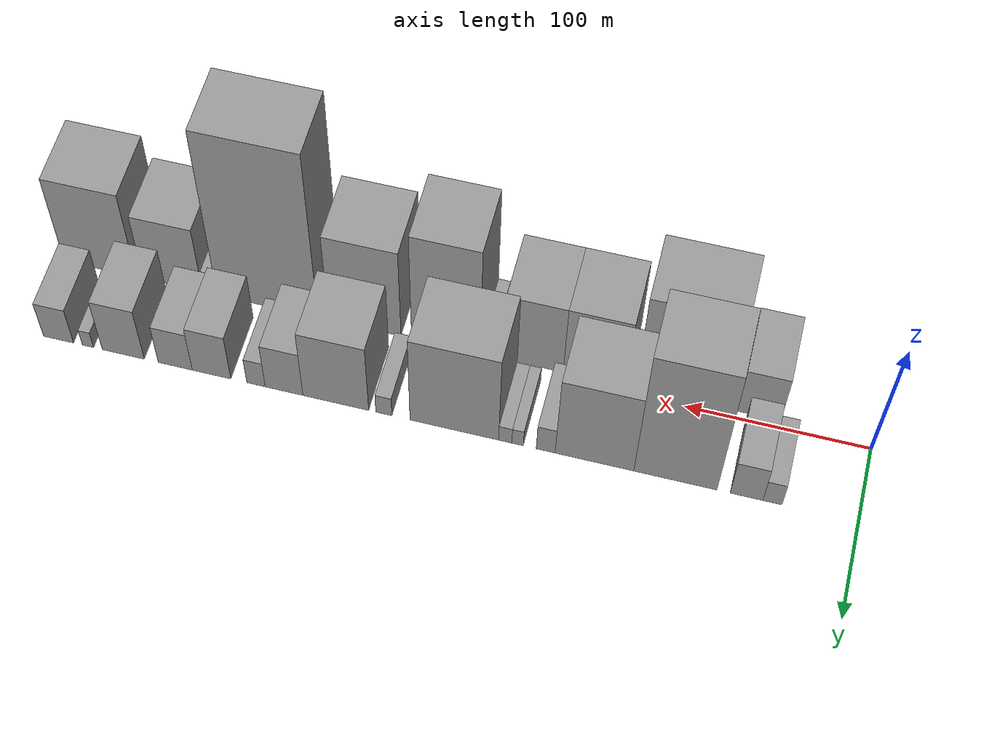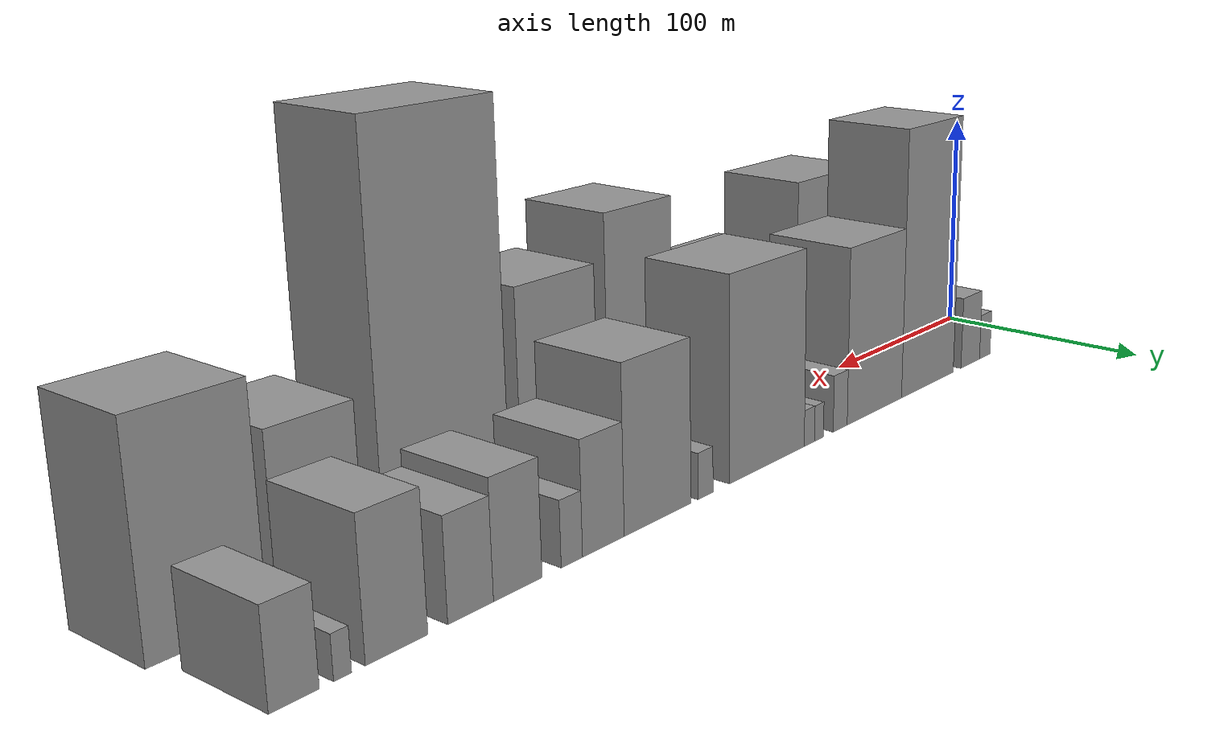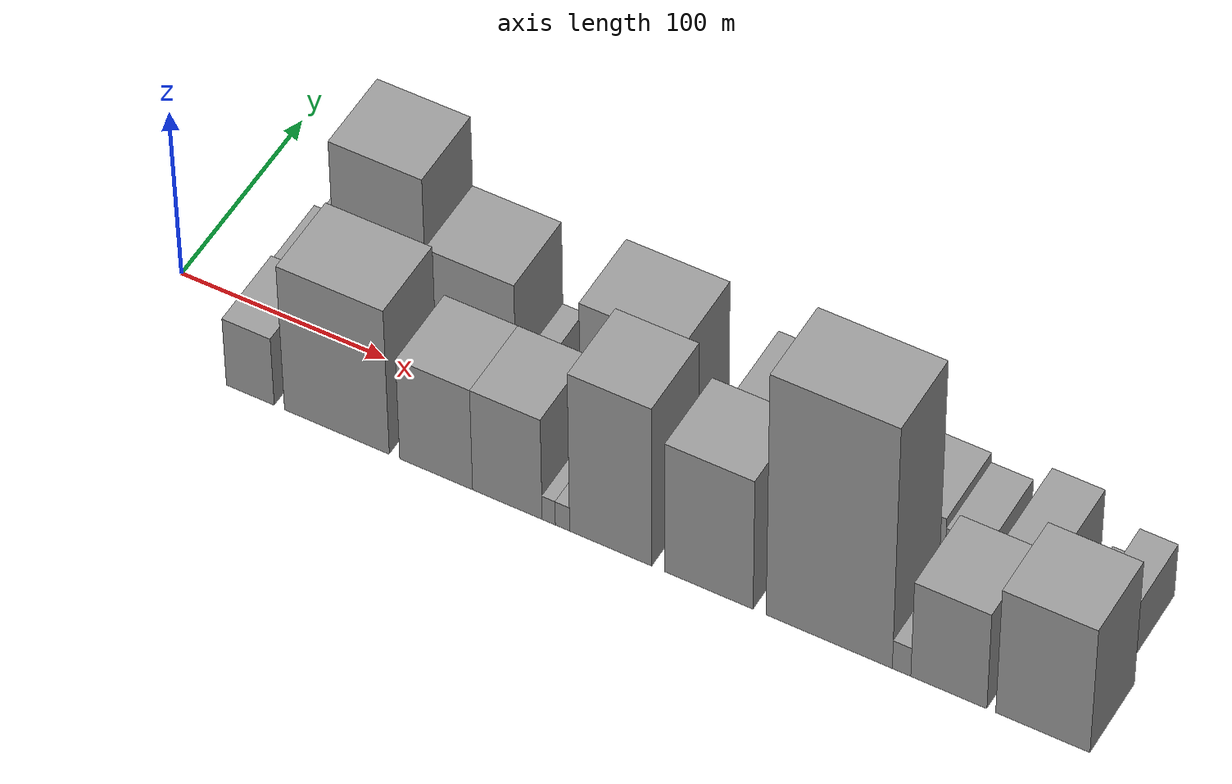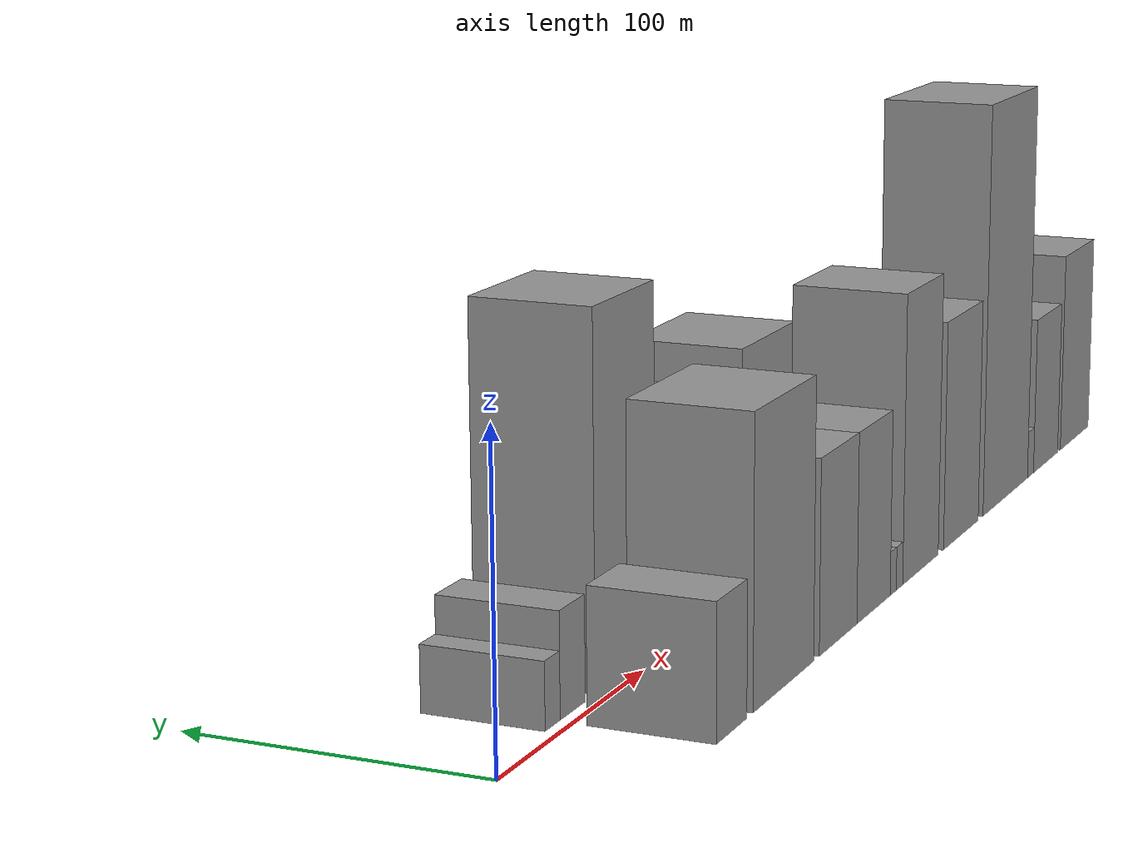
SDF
<sdf version="1.6">
 <world name="default">
  <scene>
   <sky><clouds><speed>12</speed></clouds></sky>
   <ambient>0.4 0.4 0.4 1</ambient>
   <background>0.7 0.7 0.7 1</background>
   <shadows>1</shadows>
  </scene>
  <gravity>0 0 -9.8066</gravity>
  <magnetic_field>6e-06 2.3e-05 -4.2e-05</magnetic_field>
  <physics default="0" name="default_physics" type="ode">
   <ode>
    <solver>
     <type>quick</type>
     <iters>10</iters>
     <sor>1.0</sor>
     <use_dynamic_moi_rescaling>0</use_dynamic_moi_rescaling>
    </solver>
    <constraints>
     <cfm>0</cfm>
     <erp>0.2</erp>
     <contact_max_correcting_vel>100</contact_max_correcting_vel>
     <contact_surface_layer>0.001</contact_surface_layer>
    </constraints>
   </ode>
   <max_step_size>0.004</max_step_size>
   <real_time_factor>1</real_time_factor>
   <real_time_update_rate>250</real_time_update_rate>
  </physics>
  <light name="sun" type="directional">
   <pose>0 0 10 0 0 0</pose>
   <diffuse>0.8 0.8 0.8 1</diffuse>
   <specular>0.2 0.2 0.2 1</specular>
   <attenuation>
    <range>1000</range>
    <constant>0.9</constant>
    <linear>0.01</linear>
    <quadratic>0.001</quadratic>
   </attenuation>
   <direction>-0.5 0.1 -0.9</direction>
  </light>
  <model name="building_1">
   <static>1</static>
   <pose>45.0158 24.5000 0 0.000000 0.000000 1.570796</pose>
   <link name="link">
    <pose>0 0 10.50 0 0 0</pose>
    <collision name="collision"><geometry><box><size>40.0000 10.0315 21.0000</size></box></geometry></collision>
    <visual name="visual">
     <cast_shadows>0</cast_shadows>
     <geometry><box><size>40.0000 10.0315 21.0000</size></box></geometry>
     <material>
      <script>
       <uri>model://grey_wall/materials/scripts</uri>
       <uri>model://grey_wall/materials/textures</uri>
       <name>vrc/grey_wall</name>
      </script>
     </material>
    </visual>
   </link>
  </model>
  <model name="building_2">
   <static>1</static>
   <pose>58.6324 24.5000 0 0.000000 0.000000 1.570796</pose>
   <link name="link">
    <pose>0 0 16.50 0 0 0</pose>
    <collision name="collision"><geometry><box><size>40.0000 17.2018 33.0000</size></box></geometry></collision>
    <visual name="visual">
     <cast_shadows>0</cast_shadows>
     <geometry><box><size>40.0000 17.2018 33.0000</size></box></geometry>
     <material>
      <script>
       <uri>model://grey_wall/materials/scripts</uri>
       <uri>model://grey_wall/materials/textures</uri>
       <name>vrc/grey_wall</name>
      </script>
     </material>
    </visual>
   </link>
  </model>
  <model name="building_3">
   <static>1</static>
   <pose>96.3854 24.5000 0 0.000000 0.000000 1.570796</pose>
   <link name="link">
    <pose>0 0 58.50 0 0 0</pose>
    <collision name="collision"><geometry><box><size>40.0000 44.3041 117.0000</size></box></geometry></collision>
    <visual name="visual">
     <cast_shadows>0</cast_shadows>
     <geometry><box><size>40.0000 44.3041 117.0000</size></box></geometry>
     <material>
      <script>
       <uri>model://grey_wall/materials/scripts</uri>
       <uri>model://grey_wall/materials/textures</uri>
       <name>vrc/grey_wall</name>
      </script>
     </material>
    </visual>
   </link>
  </model>
  <model name="building_4">
   <static>1</static>
   <pose>139.6965 24.5000 0 0.000000 0.000000 1.570796</pose>
   <link name="link">
    <pose>0 0 37.50 0 0 0</pose>
    <collision name="collision"><geometry><box><size>40.0000 42.3180 75.0000</size></box></geometry></collision>
    <visual name="visual">
     <cast_shadows>0</cast_shadows>
     <geometry><box><size>40.0000 42.3180 75.0000</size></box></geometry>
     <material>
      <script>
       <uri>model://grey_wall/materials/scripts</uri>
       <uri>model://grey_wall/materials/textures</uri>
       <name>vrc/grey_wall</name>
      </script>
     </material>
    </visual>
   </link>
  </model>
  <model name="building_5">
   <static>1</static>
   <pose>165.9665 24.5000 0 0.000000 0.000000 1.570796</pose>
   <link name="link">
    <pose>0 0 12.00 0 0 0</pose>
    <collision name="collision"><geometry><box><size>40.0000 10.2221 24.0000</size></box></geometry></collision>
    <visual name="visual">
     <cast_shadows>0</cast_shadows>
     <geometry><box><size>40.0000 10.2221 24.0000</size></box></geometry>
     <material>
      <script>
       <uri>model://grey_wall/materials/scripts</uri>
       <uri>model://grey_wall/materials/textures</uri>
       <name>vrc/grey_wall</name>
      </script>
     </material>
    </visual>
   </link>
  </model>
  <model name="building_6">
   <static>1</static>
   <pose>181.2003 24.5000 0 0.000000 0.000000 1.570796</pose>
   <link name="link">
    <pose>0 0 7.50 0 0 0</pose>
    <collision name="collision"><geometry><box><size>40.0000 6.2456 15.0000</size></box></geometry></collision>
    <visual name="visual">
     <cast_shadows>0</cast_shadows>
     <geometry><box><size>40.0000 6.2456 15.0000</size></box></geometry>
     <material>
      <script>
       <uri>model://grey_wall/materials/scripts</uri>
       <uri>model://grey_wall/materials/textures</uri>
       <name>vrc/grey_wall</name>
      </script>
     </material>
    </visual>
   </link>
  </model>
  <model name="building_7">
   <static>1</static>
   <pose>187.9202 24.5000 0 0.000000 0.000000 1.570796</pose>
   <link name="link">
    <pose>0 0 7.50 0 0 0</pose>
    <collision name="collision"><geometry><box><size>40.0000 7.1940 15.0000</size></box></geometry></collision>
    <visual name="visual">
     <cast_shadows>0</cast_shadows>
     <geometry><box><size>40.0000 7.1940 15.0000</size></box></geometry>
     <material>
      <script>
       <uri>model://grey_wall/materials/scripts</uri>
       <uri>model://grey_wall/materials/textures</uri>
       <name>vrc/grey_wall</name>
      </script>
     </material>
    </visual>
   </link>
  </model>
  <model name="building_8">
   <static>1</static>
   <pose>215.7750 24.5000 0 0.000000 0.000000 1.570796</pose>
   <link name="link">
    <pose>0 0 40.50 0 0 0</pose>
    <collision name="collision"><geometry><box><size>40.0000 48.5157 81.0000</size></box></geometry></collision>
    <visual name="visual">
     <cast_shadows>0</cast_shadows>
     <geometry><box><size>40.0000 48.5157 81.0000</size></box></geometry>
     <material>
      <script>
       <uri>model://grey_wall/materials/scripts</uri>
       <uri>model://grey_wall/materials/textures</uri>
       <name>vrc/grey_wall</name>
      </script>
     </material>
    </visual>
   </link>
  </model>
  <model name="building_9">
   <static>1</static>
   <pose>254.4575 24.5000 0 0.000000 0.000000 1.570796</pose>
   <link name="link">
    <pose>0 0 9.00 0 0 0</pose>
    <collision name="collision"><geometry><box><size>40.0000 8.8493 18.0000</size></box></geometry></collision>
    <visual name="visual">
     <cast_shadows>0</cast_shadows>
     <geometry><box><size>40.0000 8.8493 18.0000</size></box></geometry>
     <material>
      <script>
       <uri>model://grey_wall/materials/scripts</uri>
       <uri>model://grey_wall/materials/textures</uri>
       <name>vrc/grey_wall</name>
      </script>
     </material>
    </visual>
   </link>
  </model>
  <model name="building_10">
   <static>1</static>
   <pose>281.1869 24.5000 0 0.000000 0.000000 1.570796</pose>
   <link name="link">
    <pose>0 0 31.50 0 0 0</pose>
    <collision name="collision"><geometry><box><size>40.0000 36.6095 63.0000</size></box></geometry></collision>
    <visual name="visual">
     <cast_shadows>0</cast_shadows>
     <geometry><box><size>40.0000 36.6095 63.0000</size></box></geometry>
     <material>
      <script>
       <uri>model://grey_wall/materials/scripts</uri>
       <uri>model://grey_wall/materials/textures</uri>
       <name>vrc/grey_wall</name>
      </script>
     </material>
    </visual>
   </link>
  </model>
  <model name="building_11">
   <static>1</static>
   <pose>310.0499 24.5000 0 0.000000 0.000000 1.570796</pose>
   <link name="link">
    <pose>0 0 21.00 0 0 0</pose>
    <collision name="collision"><geometry><box><size>40.0000 21.1164 42.0000</size></box></geometry></collision>
    <visual name="visual">
     <cast_shadows>0</cast_shadows>
     <geometry><box><size>40.0000 21.1164 42.0000</size></box></geometry>
     <material>
      <script>
       <uri>model://grey_wall/materials/scripts</uri>
       <uri>model://grey_wall/materials/textures</uri>
       <name>vrc/grey_wall</name>
      </script>
     </material>
    </visual>
   </link>
  </model>
  <model name="building_12">
   <static>1</static>
   <pose>325.7753 24.5000 0 0.000000 0.000000 1.570796</pose>
   <link name="link">
    <pose>0 0 12.00 0 0 0</pose>
    <collision name="collision"><geometry><box><size>40.0000 10.3344 24.0000</size></box></geometry></collision>
    <visual name="visual">
     <cast_shadows>0</cast_shadows>
     <geometry><box><size>40.0000 10.3344 24.0000</size></box></geometry>
     <material>
      <script>
       <uri>model://grey_wall/materials/scripts</uri>
       <uri>model://grey_wall/materials/textures</uri>
       <name>vrc/grey_wall</name>
      </script>
     </material>
    </visual>
   </link>
  </model>
  <model name="building_13">
   <static>1</static>
   <pose>350.8565 24.5000 0 0.000000 0.000000 1.570796</pose>
   <link name="link">
    <pose>0 0 21.00 0 0 0</pose>
    <collision name="collision"><geometry><box><size>40.0000 21.8279 42.0000</size></box></geometry></collision>
    <visual name="visual">
     <cast_shadows>0</cast_shadows>
     <geometry><box><size>40.0000 21.8279 42.0000</size></box></geometry>
     <material>
      <script>
       <uri>model://grey_wall/materials/scripts</uri>
       <uri>model://grey_wall/materials/textures</uri>
       <name>vrc/grey_wall</name>
      </script>
     </material>
    </visual>
   </link>
  </model>
  <model name="building_14">
   <static>1</static>
   <pose>371.4432 24.5000 0 0.000000 0.000000 1.570796</pose>
   <link name="link">
    <pose>0 0 18.00 0 0 0</pose>
    <collision name="collision"><geometry><box><size>40.0000 19.3454 36.0000</size></box></geometry></collision>
    <visual name="visual">
     <cast_shadows>0</cast_shadows>
     <geometry><box><size>40.0000 19.3454 36.0000</size></box></geometry>
     <material>
      <script>
       <uri>model://grey_wall/materials/scripts</uri>
       <uri>model://grey_wall/materials/textures</uri>
       <name>vrc/grey_wall</name>
      </script>
     </material>
    </visual>
   </link>
  </model>
  <model name="building_15">
   <static>1</static>
   <pose>401.1486 24.5000 0 0.000000 0.000000 1.570796</pose>
   <link name="link">
    <pose>0 0 24.00 0 0 0</pose>
    <collision name="collision"><geometry><box><size>40.0000 24.0653 48.0000</size></box></geometry></collision>
    <visual name="visual">
     <cast_shadows>0</cast_shadows>
     <geometry><box><size>40.0000 24.0653 48.0000</size></box></geometry>
     <material>
      <script>
       <uri>model://grey_wall/materials/scripts</uri>
       <uri>model://grey_wall/materials/textures</uri>
       <name>vrc/grey_wall</name>
      </script>
     </material>
    </visual>
   </link>
  </model>
  <model name="building_16">
   <static>1</static>
   <pose>421.4278 24.5000 0 0.000000 0.000000 1.570796</pose>
   <link name="link">
    <pose>0 0 7.50 0 0 0</pose>
    <collision name="collision"><geometry><box><size>40.0000 6.4932 15.0000</size></box></geometry></collision>
    <visual name="visual">
     <cast_shadows>0</cast_shadows>
     <geometry><box><size>40.0000 6.4932 15.0000</size></box></geometry>
     <material>
      <script>
       <uri>model://grey_wall/materials/scripts</uri>
       <uri>model://grey_wall/materials/textures</uri>
       <name>vrc/grey_wall</name>
      </script>
     </material>
    </visual>
   </link>
  </model>
  <model name="building_17">
   <static>1</static>
   <pose>438.3536 24.5000 0 0.000000 0.000000 1.570796</pose>
   <link name="link">
    <pose>0 0 16.50 0 0 0</pose>
    <collision name="collision"><geometry><box><size>40.0000 17.3582 33.0000</size></box></geometry></collision>
    <visual name="visual">
     <cast_shadows>0</cast_shadows>
     <geometry><box><size>40.0000 17.3582 33.0000</size></box></geometry>
     <material>
      <script>
       <uri>model://grey_wall/materials/scripts</uri>
       <uri>model://grey_wall/materials/textures</uri>
       <name>vrc/grey_wall</name>
      </script>
     </material>
    </visual>
   </link>
  </model>
  <model name="building_18">
   <static>1</static>
   <pose>60.6383 -24.5000 0 0.000000 0.000000 1.570796</pose>
   <link name="link">
    <pose>0 0 21.00 0 0 0</pose>
    <collision name="collision"><geometry><box><size>40.0000 23.2767 42.0000</size></box></geometry></collision>
    <visual name="visual">
     <cast_shadows>0</cast_shadows>
     <geometry><box><size>40.0000 23.2767 42.0000</size></box></geometry>
     <material>
      <script>
       <uri>model://grey_wall/materials/scripts</uri>
       <uri>model://grey_wall/materials/textures</uri>
       <name>vrc/grey_wall</name>
      </script>
     </material>
    </visual>
   </link>
  </model>
  <model name="building_19">
   <static>1</static>
   <pose>102.5794 -24.5000 0 0.000000 0.000000 1.570796</pose>
   <link name="link">
    <pose>0 0 45.00 0 0 0</pose>
    <collision name="collision"><geometry><box><size>40.0000 50.6055 90.0000</size></box></geometry></collision>
    <visual name="visual">
     <cast_shadows>0</cast_shadows>
     <geometry><box><size>40.0000 50.6055 90.0000</size></box></geometry>
     <material>
      <script>
       <uri>model://grey_wall/materials/scripts</uri>
       <uri>model://grey_wall/materials/textures</uri>
       <name>vrc/grey_wall</name>
      </script>
     </material>
    </visual>
   </link>
  </model>
  <model name="building_20">
   <static>1</static>
   <pose>150.3091 -24.5000 0 0.000000 0.000000 1.570796</pose>
   <link name="link">
    <pose>0 0 31.50 0 0 0</pose>
    <collision name="collision"><geometry><box><size>40.0000 34.8537 63.0000</size></box></geometry></collision>
    <visual name="visual">
     <cast_shadows>0</cast_shadows>
     <geometry><box><size>40.0000 34.8537 63.0000</size></box></geometry>
     <material>
      <script>
       <uri>model://grey_wall/materials/scripts</uri>
       <uri>model://grey_wall/materials/textures</uri>
       <name>vrc/grey_wall</name>
      </script>
     </material>
    </visual>
   </link>
  </model>
  <model name="building_21">
   <static>1</static>
   <pose>184.2507 -24.5000 0 0.000000 0.000000 1.570796</pose>
   <link name="link">
    <pose>0 0 31.50 0 0 0</pose>
    <collision name="collision"><geometry><box><size>40.0000 33.0296 63.0000</size></box></geometry></collision>
    <visual name="visual">
     <cast_shadows>0</cast_shadows>
     <geometry><box><size>40.0000 33.0296 63.0000</size></box></geometry>
     <material>
      <script>
       <uri>model://grey_wall/materials/scripts</uri>
       <uri>model://grey_wall/materials/textures</uri>
       <name>vrc/grey_wall</name>
      </script>
     </material>
    </visual>
   </link>
  </model>
  <model name="building_22">
   <static>1</static>
   <pose>203.8833 -24.5000 0 0.000000 0.000000 1.570796</pose>
   <link name="link">
    <pose>0 0 7.50 0 0 0</pose>
    <collision name="collision"><geometry><box><size>40.0000 6.2356 15.0000</size></box></geometry></collision>
    <visual name="visual">
     <cast_shadows>0</cast_shadows>
     <geometry><box><size>40.0000 6.2356 15.0000</size></box></geometry>
     <material>
      <script>
       <uri>model://grey_wall/materials/scripts</uri>
       <uri>model://grey_wall/materials/textures</uri>
       <name>vrc/grey_wall</name>
      </script>
     </material>
    </visual>
   </link>
  </model>
  <model name="building_23">
   <static>1</static>
   <pose>210.3707 -24.5000 0 0.000000 0.000000 1.570796</pose>
   <link name="link">
    <pose>0 0 7.50 0 0 0</pose>
    <collision name="collision"><geometry><box><size>40.0000 6.7393 15.0000</size></box></geometry></collision>
    <visual name="visual">
     <cast_shadows>0</cast_shadows>
     <geometry><box><size>40.0000 6.7393 15.0000</size></box></geometry>
     <material>
      <script>
       <uri>model://grey_wall/materials/scripts</uri>
       <uri>model://grey_wall/materials/textures</uri>
       <name>vrc/grey_wall</name>
      </script>
     </material>
    </visual>
   </link>
  </model>
  <model name="building_24">
   <static>1</static>
   <pose>233.0725 -24.5000 0 0.000000 0.000000 1.570796</pose>
   <link name="link">
    <pose>0 0 49.50 0 0 0</pose>
    <collision name="collision"><geometry><box><size>40.0000 38.6642 99.0000</size></box></geometry></collision>
    <visual name="visual">
     <cast_shadows>0</cast_shadows>
     <geometry><box><size>40.0000 38.6642 99.0000</size></box></geometry>
     <material>
      <script>
       <uri>model://grey_wall/materials/scripts</uri>
       <uri>model://grey_wall/materials/textures</uri>
       <name>vrc/grey_wall</name>
      </script>
     </material>
    </visual>
   </link>
  </model>
  <model name="building_25">
   <static>1</static>
   <pose>278.9794 -24.5000 0 0.000000 0.000000 1.570796</pose>
   <link name="link">
    <pose>0 0 40.50 0 0 0</pose>
    <collision name="collision"><geometry><box><size>40.0000 41.1498 81.0000</size></box></geometry></collision>
    <visual name="visual">
     <cast_shadows>0</cast_shadows>
     <geometry><box><size>40.0000 41.1498 81.0000</size></box></geometry>
     <material>
      <script>
       <uri>model://grey_wall/materials/scripts</uri>
       <uri>model://grey_wall/materials/textures</uri>
       <name>vrc/grey_wall</name>
      </script>
     </material>
    </visual>
   </link>
  </model>
  <model name="building_26">
   <static>1</static>
   <pose>334.5907 -24.5000 0 0.000000 0.000000 1.570796</pose>
   <link name="link">
    <pose>0 0 75.00 0 0 0</pose>
    <collision name="collision"><geometry><box><size>40.0000 58.0728 150.0000</size></box></geometry></collision>
    <visual name="visual">
     <cast_shadows>0</cast_shadows>
     <geometry><box><size>40.0000 58.0728 150.0000</size></box></geometry>
     <material>
      <script>
       <uri>model://grey_wall/materials/scripts</uri>
       <uri>model://grey_wall/materials/textures</uri>
       <name>vrc/grey_wall</name>
      </script>
     </material>
    </visual>
   </link>
  </model>
  <model name="building_27">
   <static>1</static>
   <pose>367.8494 -24.5000 0 0.000000 0.000000 1.570796</pose>
   <link name="link">
    <pose>0 0 9.00 0 0 0</pose>
    <collision name="collision"><geometry><box><size>40.0000 8.4445 18.0000</size></box></geometry></collision>
    <visual name="visual">
     <cast_shadows>0</cast_shadows>
     <geometry><box><size>40.0000 8.4445 18.0000</size></box></geometry>
     <material>
      <script>
       <uri>model://grey_wall/materials/scripts</uri>
       <uri>model://grey_wall/materials/textures</uri>
       <name>vrc/grey_wall</name>
      </script>
     </material>
    </visual>
   </link>
  </model>
  <model name="building_28">
   <static>1</static>
   <pose>389.3724 -24.5000 0 0.000000 0.000000 1.570796</pose>
   <link name="link">
    <pose>0 0 30.00 0 0 0</pose>
    <collision name="collision"><geometry><box><size>40.0000 34.6014 60.0000</size></box></geometry></collision>
    <visual name="visual">
     <cast_shadows>0</cast_shadows>
     <geometry><box><size>40.0000 34.6014 60.0000</size></box></geometry>
     <material>
      <script>
       <uri>model://grey_wall/materials/scripts</uri>
       <uri>model://grey_wall/materials/textures</uri>
       <name>vrc/grey_wall</name>
      </script>
     </material>
    </visual>
   </link>
  </model>
  <model name="building_29">
   <static>1</static>
   <pose>431.9219 -24.5000 0 0.000000 0.000000 1.570796</pose>
   <link name="link">
    <pose>0 0 39.00 0 0 0</pose>
    <collision name="collision"><geometry><box><size>40.0000 42.4976 78.0000</size></box></geometry></collision>
    <visual name="visual">
     <cast_shadows>0</cast_shadows>
     <geometry><box><size>40.0000 42.4976 78.0000</size></box></geometry>
     <material>
      <script>
       <uri>model://grey_wall/materials/scripts</uri>
       <uri>model://grey_wall/materials/textures</uri>
       <name>vrc/grey_wall</name>
      </script>
     </material>
    </visual>
   </link>
  </model>
 </world>
</sdf>
